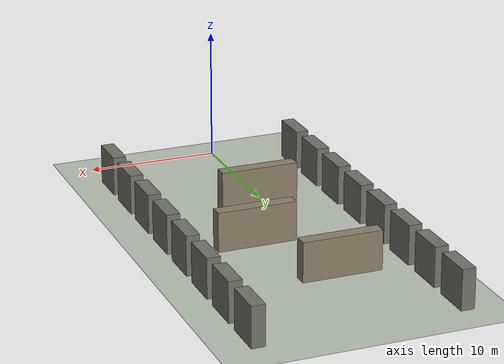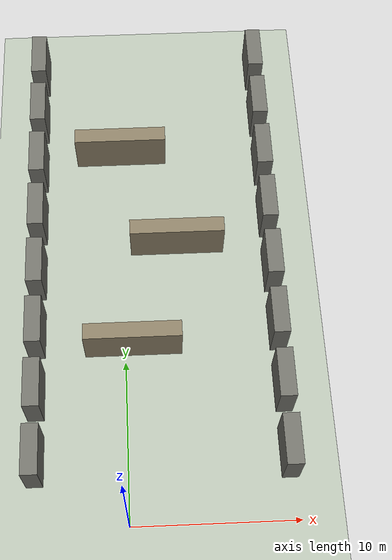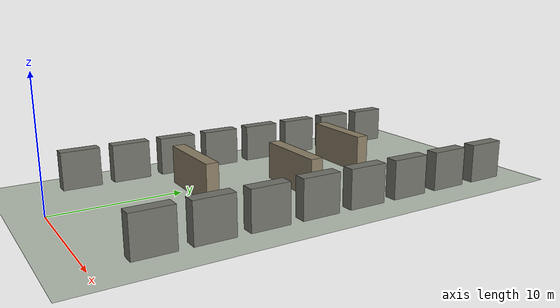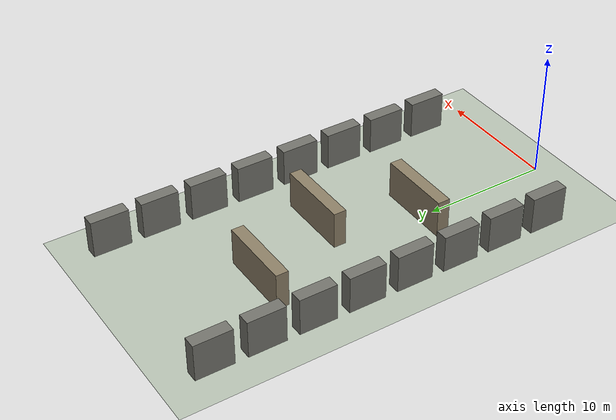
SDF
<?xml version="1.0" encoding="UTF-8"?>
<sdf version="1.9">
  <world name="sando_simple_tunnel_xtd2">
    <!-- Adapted from MIT ACL SANDO simple_tunnel world for the local XTD2/PX4 Gazebo stack. -->
    <!-- This file intentionally avoids SANDO-specific ROS plugins and external model URIs. -->
    <physics name="default_physics" type="ode">
      <max_step_size>0.004</max_step_size>
      <real_time_factor>1.0</real_time_factor>
      <real_time_update_rate>250</real_time_update_rate>
    </physics>
    <gravity>0 0 -9.8</gravity>
    <magnetic_field>6e-06 2.3e-05 -4.2e-05</magnetic_field>
    <atmosphere type="adiabatic"/>
    <scene>
      <grid>false</grid>
      <ambient>0.45 0.45 0.45 1</ambient>
      <background>0.70 0.74 0.78 1</background>
      <shadows>true</shadows>
    </scene>
    <model name="ground_plane">
      <static>true</static>
      <link name="link">
        <collision name="collision">
          <geometry>
            <plane><normal>0 0 1</normal><size>120 120</size></plane>
          </geometry>
        </collision>
        <visual name="visual">
          <geometry>
            <plane><normal>0 0 1</normal><size>120 120</size></plane>
          </geometry>
          <material>
            <ambient>0.72 0.76 0.70 1</ambient>
            <diffuse>0.72 0.76 0.70 1</diffuse>
          </material>
        </visual>
      </link>
    </model>
    <light name="sunUTC" type="directional">
      <pose>0 0 500 0 0 0</pose>
      <cast_shadows>true</cast_shadows>
      <intensity>1</intensity>
      <direction>0.001 0.625 -0.78</direction>
      <diffuse>0.904 0.904 0.904 1</diffuse>
      <specular>0.271 0.271 0.271 1</specular>
      <attenuation><range>2000</range><linear>0</linear><constant>1</constant><quadratic>0</quadratic></attenuation>
    </light>
    <spherical_coordinates>
      <surface_model>EARTH_WGS84</surface_model>
      <world_frame_orientation>ENU</world_frame_orientation>
      <latitude_deg>47.397971057728974</latitude_deg>
      <longitude_deg>8.546163739800146</longitude_deg>
      <elevation>0</elevation>
    </spherical_coordinates>
    <model name="tunnel_left_0">
      <static>true</static>
      <pose>-5.500 4.000 1.500 0 0 0</pose>
      <link name="link">
        <collision name="collision"><geometry><box><size>1.000 3.000 3.000</size></box></geometry></collision>
        <visual name="visual">
          <geometry><box><size>1.000 3.000 3.000</size></box></geometry>
          <material><ambient>0.45 0.45 0.42 1</ambient><diffuse>0.45 0.45 0.42 1</diffuse></material>
        </visual>
      </link>
    </model>
    <model name="tunnel_right_0">
      <static>true</static>
      <pose>9.500 4.000 1.500 0 0 0</pose>
      <link name="link">
        <collision name="collision"><geometry><box><size>1.000 3.000 3.000</size></box></geometry></collision>
        <visual name="visual">
          <geometry><box><size>1.000 3.000 3.000</size></box></geometry>
          <material><ambient>0.45 0.45 0.42 1</ambient><diffuse>0.45 0.45 0.42 1</diffuse></material>
        </visual>
      </link>
    </model>
    <model name="tunnel_left_1">
      <static>true</static>
      <pose>-5.500 8.000 1.500 0 0 0</pose>
      <link name="link">
        <collision name="collision"><geometry><box><size>1.000 3.000 3.000</size></box></geometry></collision>
        <visual name="visual">
          <geometry><box><size>1.000 3.000 3.000</size></box></geometry>
          <material><ambient>0.45 0.45 0.42 1</ambient><diffuse>0.45 0.45 0.42 1</diffuse></material>
        </visual>
      </link>
    </model>
    <model name="tunnel_right_1">
      <static>true</static>
      <pose>9.500 8.000 1.500 0 0 0</pose>
      <link name="link">
        <collision name="collision"><geometry><box><size>1.000 3.000 3.000</size></box></geometry></collision>
        <visual name="visual">
          <geometry><box><size>1.000 3.000 3.000</size></box></geometry>
          <material><ambient>0.45 0.45 0.42 1</ambient><diffuse>0.45 0.45 0.42 1</diffuse></material>
        </visual>
      </link>
    </model>
    <model name="tunnel_left_2">
      <static>true</static>
      <pose>-5.500 12.000 1.500 0 0 0</pose>
      <link name="link">
        <collision name="collision"><geometry><box><size>1.000 3.000 3.000</size></box></geometry></collision>
        <visual name="visual">
          <geometry><box><size>1.000 3.000 3.000</size></box></geometry>
          <material><ambient>0.45 0.45 0.42 1</ambient><diffuse>0.45 0.45 0.42 1</diffuse></material>
        </visual>
      </link>
    </model>
    <model name="tunnel_right_2">
      <static>true</static>
      <pose>9.500 12.000 1.500 0 0 0</pose>
      <link name="link">
        <collision name="collision"><geometry><box><size>1.000 3.000 3.000</size></box></geometry></collision>
        <visual name="visual">
          <geometry><box><size>1.000 3.000 3.000</size></box></geometry>
          <material><ambient>0.45 0.45 0.42 1</ambient><diffuse>0.45 0.45 0.42 1</diffuse></material>
        </visual>
      </link>
    </model>
    <model name="tunnel_left_3">
      <static>true</static>
      <pose>-5.500 16.000 1.500 0 0 0</pose>
      <link name="link">
        <collision name="collision"><geometry><box><size>1.000 3.000 3.000</size></box></geometry></collision>
        <visual name="visual">
          <geometry><box><size>1.000 3.000 3.000</size></box></geometry>
          <material><ambient>0.45 0.45 0.42 1</ambient><diffuse>0.45 0.45 0.42 1</diffuse></material>
        </visual>
      </link>
    </model>
    <model name="tunnel_right_3">
      <static>true</static>
      <pose>9.500 16.000 1.500 0 0 0</pose>
      <link name="link">
        <collision name="collision"><geometry><box><size>1.000 3.000 3.000</size></box></geometry></collision>
        <visual name="visual">
          <geometry><box><size>1.000 3.000 3.000</size></box></geometry>
          <material><ambient>0.45 0.45 0.42 1</ambient><diffuse>0.45 0.45 0.42 1</diffuse></material>
        </visual>
      </link>
    </model>
    <model name="tunnel_left_4">
      <static>true</static>
      <pose>-5.500 20.000 1.500 0 0 0</pose>
      <link name="link">
        <collision name="collision"><geometry><box><size>1.000 3.000 3.000</size></box></geometry></collision>
        <visual name="visual">
          <geometry><box><size>1.000 3.000 3.000</size></box></geometry>
          <material><ambient>0.45 0.45 0.42 1</ambient><diffuse>0.45 0.45 0.42 1</diffuse></material>
        </visual>
      </link>
    </model>
    <model name="tunnel_right_4">
      <static>true</static>
      <pose>9.500 20.000 1.500 0 0 0</pose>
      <link name="link">
        <collision name="collision"><geometry><box><size>1.000 3.000 3.000</size></box></geometry></collision>
        <visual name="visual">
          <geometry><box><size>1.000 3.000 3.000</size></box></geometry>
          <material><ambient>0.45 0.45 0.42 1</ambient><diffuse>0.45 0.45 0.42 1</diffuse></material>
        </visual>
      </link>
    </model>
    <model name="tunnel_left_5">
      <static>true</static>
      <pose>-5.500 24.000 1.500 0 0 0</pose>
      <link name="link">
        <collision name="collision"><geometry><box><size>1.000 3.000 3.000</size></box></geometry></collision>
        <visual name="visual">
          <geometry><box><size>1.000 3.000 3.000</size></box></geometry>
          <material><ambient>0.45 0.45 0.42 1</ambient><diffuse>0.45 0.45 0.42 1</diffuse></material>
        </visual>
      </link>
    </model>
    <model name="tunnel_right_5">
      <static>true</static>
      <pose>9.500 24.000 1.500 0 0 0</pose>
      <link name="link">
        <collision name="collision"><geometry><box><size>1.000 3.000 3.000</size></box></geometry></collision>
        <visual name="visual">
          <geometry><box><size>1.000 3.000 3.000</size></box></geometry>
          <material><ambient>0.45 0.45 0.42 1</ambient><diffuse>0.45 0.45 0.42 1</diffuse></material>
        </visual>
      </link>
    </model>
    <model name="tunnel_left_6">
      <static>true</static>
      <pose>-5.500 28.000 1.500 0 0 0</pose>
      <link name="link">
        <collision name="collision"><geometry><box><size>1.000 3.000 3.000</size></box></geometry></collision>
        <visual name="visual">
          <geometry><box><size>1.000 3.000 3.000</size></box></geometry>
          <material><ambient>0.45 0.45 0.42 1</ambient><diffuse>0.45 0.45 0.42 1</diffuse></material>
        </visual>
      </link>
    </model>
    <model name="tunnel_right_6">
      <static>true</static>
      <pose>9.500 28.000 1.500 0 0 0</pose>
      <link name="link">
        <collision name="collision"><geometry><box><size>1.000 3.000 3.000</size></box></geometry></collision>
        <visual name="visual">
          <geometry><box><size>1.000 3.000 3.000</size></box></geometry>
          <material><ambient>0.45 0.45 0.42 1</ambient><diffuse>0.45 0.45 0.42 1</diffuse></material>
        </visual>
      </link>
    </model>
    <model name="tunnel_left_7">
      <static>true</static>
      <pose>-5.500 32.000 1.500 0 0 0</pose>
      <link name="link">
        <collision name="collision"><geometry><box><size>1.000 3.000 3.000</size></box></geometry></collision>
        <visual name="visual">
          <geometry><box><size>1.000 3.000 3.000</size></box></geometry>
          <material><ambient>0.45 0.45 0.42 1</ambient><diffuse>0.45 0.45 0.42 1</diffuse></material>
        </visual>
      </link>
    </model>
    <model name="tunnel_right_7">
      <static>true</static>
      <pose>9.500 32.000 1.500 0 0 0</pose>
      <link name="link">
        <collision name="collision"><geometry><box><size>1.000 3.000 3.000</size></box></geometry></collision>
        <visual name="visual">
          <geometry><box><size>1.000 3.000 3.000</size></box></geometry>
          <material><ambient>0.45 0.45 0.42 1</ambient><diffuse>0.45 0.45 0.42 1</diffuse></material>
        </visual>
      </link>
    </model>
    <model name="tunnel_chicane_0">
      <static>true</static>
      <pose>0.500 11.000 1.500 0 0 0</pose>
      <link name="link">
        <collision name="collision"><geometry><box><size>6.000 1.000 3.000</size></box></geometry></collision>
        <visual name="visual">
          <geometry><box><size>6.000 1.000 3.000</size></box></geometry>
          <material><ambient>0.55 0.50 0.40 1</ambient><diffuse>0.55 0.50 0.40 1</diffuse></material>
        </visual>
      </link>
    </model>
    <model name="tunnel_chicane_1">
      <static>true</static>
      <pose>3.500 18.000 1.500 0 0 0</pose>
      <link name="link">
        <collision name="collision"><geometry><box><size>6.000 1.000 3.000</size></box></geometry></collision>
        <visual name="visual">
          <geometry><box><size>6.000 1.000 3.000</size></box></geometry>
          <material><ambient>0.55 0.50 0.40 1</ambient><diffuse>0.55 0.50 0.40 1</diffuse></material>
        </visual>
      </link>
    </model>
    <model name="tunnel_chicane_2">
      <static>true</static>
      <pose>0.000 25.000 1.500 0 0 0</pose>
      <link name="link">
        <collision name="collision"><geometry><box><size>6.000 1.000 3.000</size></box></geometry></collision>
        <visual name="visual">
          <geometry><box><size>6.000 1.000 3.000</size></box></geometry>
          <material><ambient>0.55 0.50 0.40 1</ambient><diffuse>0.55 0.50 0.40 1</diffuse></material>
        </visual>
      </link>
    </model>
  </world>
</sdf>
